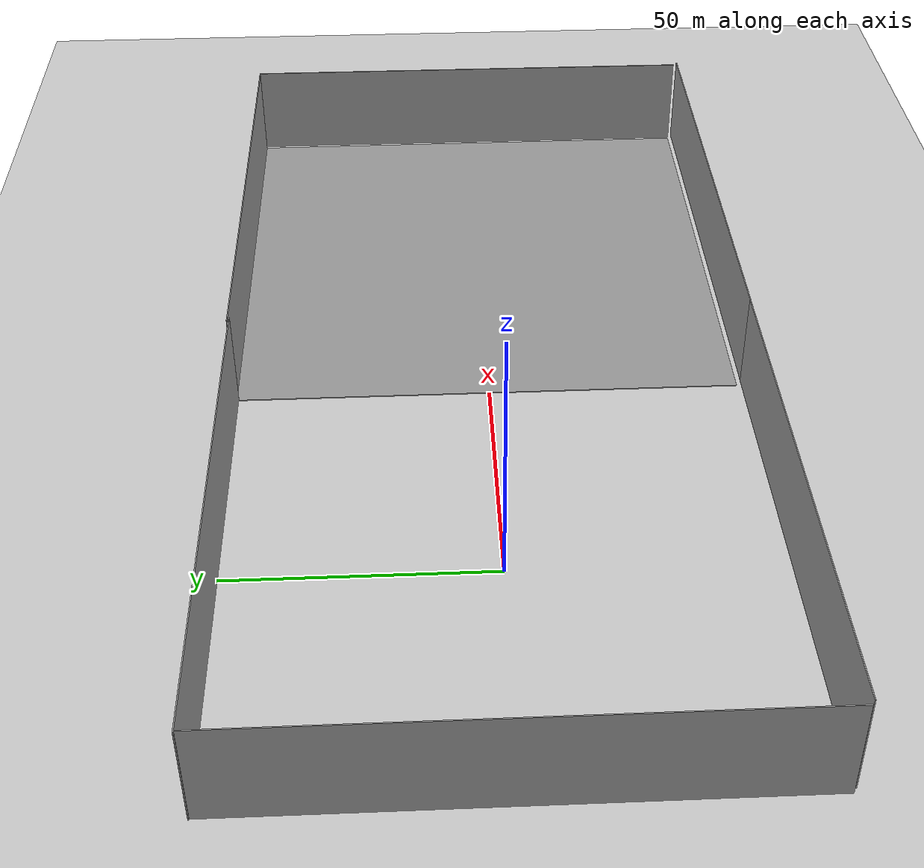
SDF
<sdf version="1.7">
 <world name="default">
  <light name="sun" type="directional">
   <pose>0 0 10 0 -0 0</pose>
   <diffuse>0.8 0.8 0.8 1</diffuse>
   <specular>0.2 0.2 0.2 1</specular>
   <attenuation>
    <range>1000</range>
    <constant>0.9</constant>
    <linear>0.01</linear>
    <quadratic>0.001</quadratic>
   </attenuation>
   <direction>-0.5 0.1 -0.9</direction>
   <spot><inner_angle>0</inner_angle><outer_angle>0</outer_angle><falloff>0</falloff></spot>
  </light>
  <plugin name="ros_interface_plugin" filename="librotors_gazebo_ros_interface_plugin.so"/>
  <model name="ground_plane">
   <static>1</static>
   <link name="link">
    <collision name="collision">
     <geometry><plane><normal>0 0 1</normal><size>100 100</size></plane></geometry>
     <surface>
      <contact><collide_bitmask>65535</collide_bitmask></contact>
      <friction><ode><mu>100</mu><mu2>50</mu2></ode></friction>
     </surface>
    </collision>
    <visual name="visual">
     <cast_shadows>0</cast_shadows>
     <geometry><plane><normal>0 0 1</normal><size>100 100</size></plane></geometry>
     <material>
      <script><uri>file://media/materials/scripts/gazebo.material</uri><name>Gazebo/Grey</name></script>
     </material>
    </visual>
   </link>
  </model>
  <gravity>0 0 -9.8</gravity>
  <magnetic_field>6e-06 2.3e-05 -4.2e-05</magnetic_field>
  <atmosphere type="adiabatic"/>
  <physics type="ode">
   <max_step_size>0.001</max_step_size>
   <real_time_factor>1</real_time_factor>
   <real_time_update_rate>1000</real_time_update_rate>
  </physics>
  <scene><ambient>0.4 0.4 0.4 1</ambient><background>0.7 0.7 0.7 1</background><shadows>1</shadows></scene>
  <spherical_coordinates>
   <surface_model>EARTH_WGS84</surface_model>
   <latitude_deg>0</latitude_deg>
   <longitude_deg>0</longitude_deg>
   <elevation>0</elevation>
   <heading_deg>0</heading_deg>
  </spherical_coordinates>
  <model name="grey_wall">
   <static>1</static>
   <link name="link">
    <pose>0 0 2.5 0 -0 0</pose>
    <collision name="collision"><geometry><box><size>100 0.2 20</size></box></geometry></collision>
    <visual name="visual">
     <cast_shadows>0</cast_shadows>
     <geometry><box><size>100 0.2 20</size></box></geometry>
     <material><script><name>vrc/grey_wall</name><uri>__default__</uri></script></material>
    </visual>
   </link>
   <pose>-0.031142 49.9399 8 0 -0 0</pose>
  </model>
  <model name="grey_wall_clone">
   <static>1</static>
   <link name="link">
    <pose>0 0 2.5 0 -0 0</pose>
    <collision name="collision"><geometry><box><size>100 0.2 20</size></box></geometry></collision>
    <visual name="visual">
     <cast_shadows>0</cast_shadows>
     <geometry><box><size>100 0.2 20</size></box></geometry>
     <material><script><name>vrc/grey_wall</name><uri>__default__</uri></script></material>
    </visual>
   </link>
   <pose>0.960572 -50.5367 8 0 -0 0</pose>
  </model>
  <model name="grey_wall_clone_0">
   <static>1</static>
   <link name="link">
    <pose>0 0 2.5 0 -0 0</pose>
    <collision name="collision"><geometry><box><size>100 0.2 20</size></box></geometry></collision>
    <visual name="visual">
     <cast_shadows>0</cast_shadows>
     <geometry><box><size>100 0.2 20</size></box></geometry>
     <material><script><name>vrc/grey_wall</name><uri>__default__</uri></script></material>
    </visual>
   </link>
   <pose>98.9717 50.2884 8 0 -0 0</pose>
  </model>
  <model name="grey_wall_clone_1">
   <static>1</static>
   <link name="link">
    <pose>0 0 2.5 0 -0 0</pose>
    <collision name="collision"><geometry><box><size>100 0.2 20</size></box></geometry></collision>
    <visual name="visual">
     <cast_shadows>0</cast_shadows>
     <geometry><box><size>100 0.2 20</size></box></geometry>
     <material><script><name>vrc/grey_wall</name><uri>__default__</uri></script></material>
    </visual>
   </link>
   <pose>100.966 -50.5732 8 0 -0 0</pose>
  </model>
  <model name="grey_wall_clone_2">
   <static>1</static>
   <link name="link">
    <pose>0 0 2.5 0 -0 0</pose>
    <collision name="collision"><geometry><box><size>100 0.2 20</size></box></geometry></collision>
    <visual name="visual">
     <cast_shadows>0</cast_shadows>
     <geometry><box><size>100 0.2 20</size></box></geometry>
     <material><script><name>vrc/grey_wall</name><uri>__default__</uri></script></material>
    </visual>
   </link>
   <pose>150.095 0.348389 8 0 -0 1.57</pose>
  </model>
  <model name="grey_wall_clone_2_clone">
   <static>1</static>
   <link name="link">
    <pose>0 0 2.5 0 -0 0</pose>
    <collision name="collision"><geometry><box><size>100 0.2 20</size></box></geometry></collision>
    <visual name="visual">
     <cast_shadows>0</cast_shadows>
     <geometry><box><size>100 0.2 20</size></box></geometry>
     <material><script><name>vrc/grey_wall</name><uri>__default__</uri></script></material>
    </visual>
   </link>
   <pose>-49.7872 -0.018248 8 0 -0 1.57</pose>
  </model>
  <model name="grey_wall_0">
   <static>1</static>
   <link name="link">
    <pose>0 0 2.5 0 -0 0</pose>
    <collision name="collision"><geometry><box><size>100 0.2 100</size></box></geometry></collision>
    <visual name="visual">
     <cast_shadows>0</cast_shadows>
     <geometry><box><size>100 0.2 100</size></box></geometry>
     <material><script><name>vrc/grey_wall</name><uri>__default__</uri></script></material>
    </visual>
   </link>
   <pose>100.131 2.84431 0 1.57 -0 0</pose>
  </model>
 </world>
</sdf>
